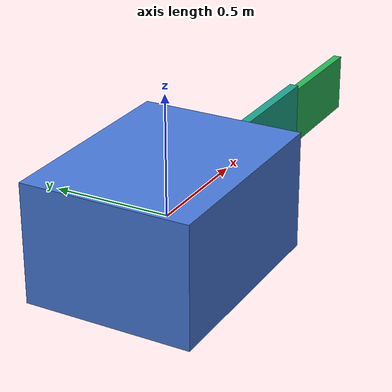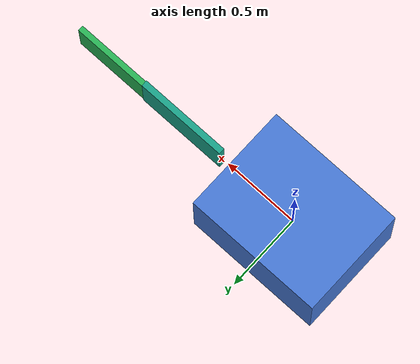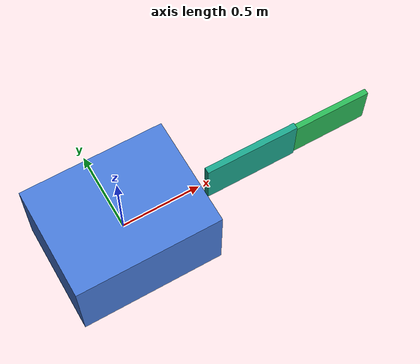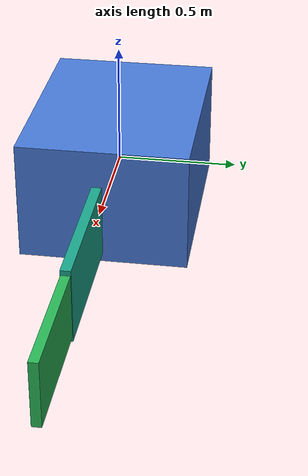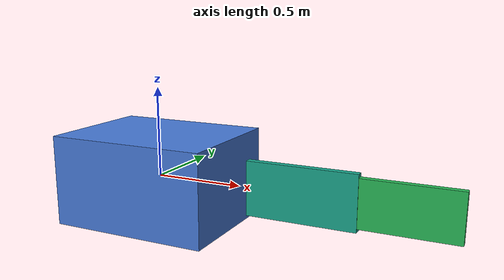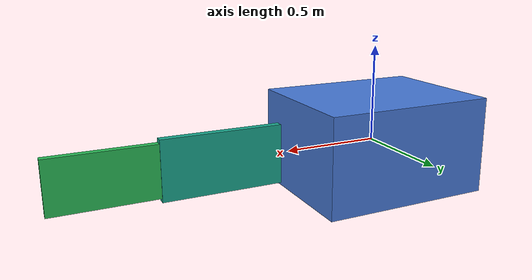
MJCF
<mujoco model="hinged_satellite">
  <compiler angle="radian"/>
  <option timestep="0.01" gravity="0 0 0">
    <flag contact="disable"/>
  </option>

  <default>
    <joint damping="0.08" armature="0.002" limited="true"/>
    <geom rgba="0.65 0.67 0.70 1"/>
  </default>

  <worldbody>
    <body name="hub" pos="0 0 0">
      <freejoint name="hub_free"/>
      <inertial pos="0 0 0" mass="120" diaginertia="8 10 12"/>
      <geom type="box" size="0.45 0.35 0.25" mass="0" rgba="0.28 0.48 0.85 1"/>

      <body name="panel_1" pos="0.55 0 0">
        <joint name="hinge_1" type="hinge" axis="0 1 0" range="-1.57079632679 1.57079632679"/>
        <inertial pos="0.3 0 0" mass="8" diaginertia="0.05 0.35 0.35"/>
        <geom type="box" pos="0.3 0 0" size="0.3 0.02 0.15" mass="0"
              rgba="0.1 0.65 0.55 1"/>

        <body name="panel_2" pos="0.6 0 0">
          <joint name="hinge_2" type="hinge" axis="0 1 0"
                 range="-1.57079632679 1.57079632679"/>
          <inertial pos="0.25 0 0" mass="6" diaginertia="0.04 0.22 0.22"/>
          <geom type="box" pos="0.25 0 0" size="0.25 0.018 0.13" mass="0"
                rgba="0.16 0.72 0.34 1"/>
        </body>
      </body>
    </body>
  </worldbody>

  <actuator>
    <position name="hinge_1_pos" joint="hinge_1" kp="12" ctrlrange="-1.57079632679 1.57079632679"/>
    <position name="hinge_2_pos" joint="hinge_2" kp="10" ctrlrange="-1.57079632679 1.57079632679"/>
  </actuator>
</mujoco>
